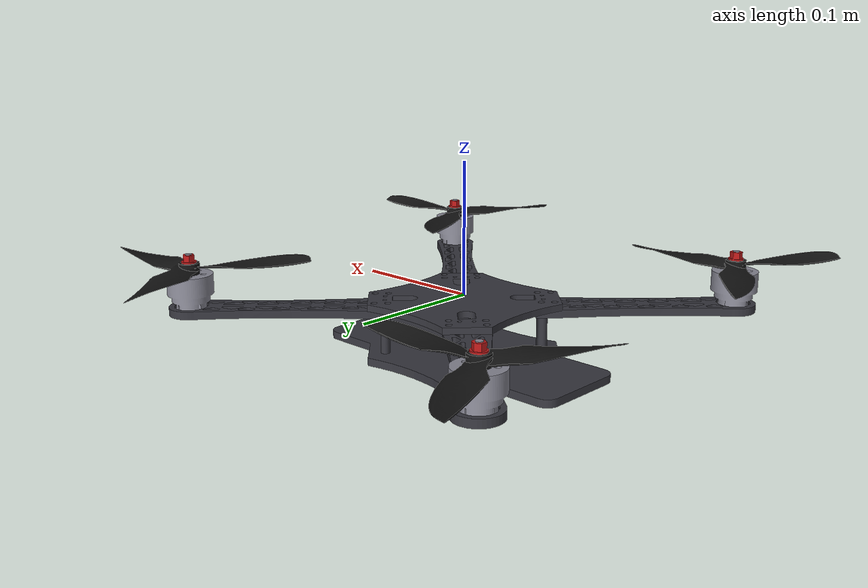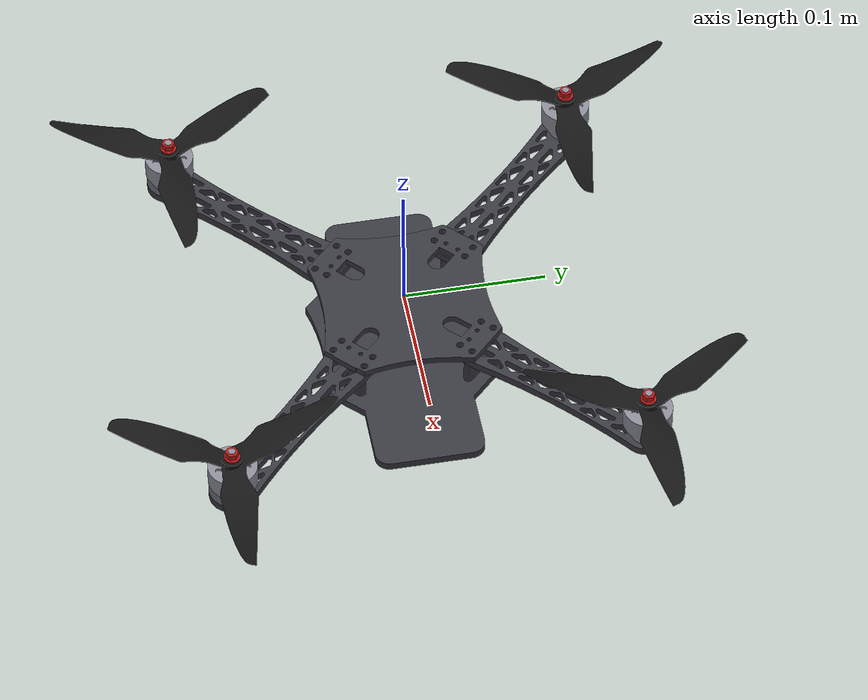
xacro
<?xml version="1.0"?>
<!--
  Custom Drone Build 03, true X, nose +x. Frame meshes are the CAD parts in
  assembled position (mm); base_link sits at the vehicle CoM.
  Rotor numbering and spin: see quad_mesh_common.xacro.
-->
<robot name="build03" xmlns:xacro="http://www.ros.org/wiki/xacro">

  <xacro:include filename="$(find my_drone_description)/urdf/quad_mesh_common.xacro"/>
  <xacro:include filename="$(find my_drone_description)/urdf/build03_params.xacro"/>
  <xacro:include filename="$(find my_drone_description)/urdf/quad_gazebo.xacro"/>

  <material name="frame_grey"><color rgba="0.22 0.22 0.25 1.0"/></material>

  <xacro:macro name="frame_part" params="file">
    <visual>
      <origin xyz="${cad_offset}" rpy="0 0 0"/>
      <geometry>
        <mesh filename="package://my_drone_description/meshes/build03/${file}.stl" scale="${mesh_scale}"/>
      </geometry>
      <material name="frame_grey"/>
    </visual>
  </xacro:macro>

  <link name="base_link">
    <inertial>
      <origin xyz="0 0 0" rpy="0 0 0"/>
      <mass value="${mass_base}"/>
      <inertia ixx="${body_ixx}" ixy="0.0" ixz="0.0"
               iyy="${body_iyy}" iyz="0.0"
               izz="${body_izz}"/>
    </inertial>

    <xacro:frame_part file="Base"/>
    <xacro:frame_part file="Chassis_with_pillar_pads"/>
    <xacro:frame_part file="Arm_plate_1"/>
    <xacro:frame_part file="Arm_plate_2"/>
    <xacro:frame_part file="Arm_plate_3"/>
    <xacro:frame_part file="Arm_plate_4"/>
    <xacro:frame_part file="Pillar_30mm_1"/>
    <xacro:frame_part file="Pillar_30mm_2"/>
    <xacro:frame_part file="Pillar_30mm_3"/>
    <xacro:frame_part file="Pillar_30mm_4"/>
    <xacro:quad_motor_visuals/>

    <!-- Base plate: what it lands on (CAD z 0-6 mm). -->
    <collision>
      <origin xyz="0 0 -0.0463" rpy="0 0 0"/>
      <geometry><box size="0.224 0.127 0.006"/></geometry>
    </collision>
    <!-- Arm plates + chassis (CAD z 36-47 mm). -->
    <collision>
      <origin xyz="0 0 -0.0078" rpy="0 0 0"/>
      <geometry><box size="0.126 0.126 0.011"/></geometry>
    </collision>
  </link>

  <xacro:quad_rotors/>

  <xacro:quad_gazebo_plugins/>

</robot>

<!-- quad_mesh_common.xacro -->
<robot xmlns:xacro="http://www.ros.org/wiki/xacro">

  <xacro:property name="mesh_scale" value="0.001 0.001 0.001"/>
  <xacro:property name="prop_mesh_h" value="0.0084"/>  <!-- prop hub height -->

  <xacro:property name="motor_constant"       value="3.7e-6"/>
  <xacro:property name="moment_constant"      value="0.016"/>
  <xacro:property name="max_rot_velocity"     value="2300"/>
  <xacro:property name="rotor_drag_coeff"     value="8.06428e-05"/>
  <xacro:property name="rolling_moment_coeff" value="1.0e-6"/>
  <!-- 7" props are heavy; spool-up/down a little slower than 5" racers. -->
  <xacro:property name="time_constant_up"     value="0.020"/>
  <xacro:property name="time_constant_down"   value="0.035"/>

  <!-- Prop 9.4 g + M5 flange nut 2 g; 180 mm diameter. -->
  <xacro:property name="mass_rotor"   value="0.0114"/>
  <xacro:property name="prop_radius"  value="0.0901"/>

  <xacro:property name="rotor_slowdown_sim" value="40"/>

  <material name="prop_black"><color rgba="0.08 0.08 0.08 1.0"/></material>
  <material name="motor_grey"><color rgba="0.55 0.55 0.60 1.0"/></material>
  <material name="nut_red">   <color rgba="0.75 0.10 0.10 1.0"/></material>

  <!-- spin: "cw" or "ccw" seen from above; selects the matching prop shape.
       x y z: rotor axis at the bottom of the prop hub, relative to the CoM. -->
  <xacro:macro name="mesh_rotor" params="number x y z spin">
    <link name="rotor_${number}">
      <inertial>
        <origin xyz="0 0 ${prop_mesh_h/2}" rpy="0 0 0"/>
        <mass value="${mass_rotor}"/>
        <inertia ixx="${mass_rotor * prop_radius * prop_radius / 4}" ixy="0.0" ixz="0.0"
                 iyy="${mass_rotor * prop_radius * prop_radius / 4}" iyz="0.0"
                 izz="${mass_rotor * prop_radius * prop_radius / 2}"/>
      </inertial>
      <visual>
        <geometry>
          <mesh filename="package://my_drone_description/meshes/common/Prop_7040-3_${spin}.stl" scale="${mesh_scale}"/>
        </geometry>
        <material name="prop_black"/>
      </visual>
      <visual>
        <origin xyz="0 0 ${prop_mesh_h}" rpy="0 0 0"/>
        <geometry>
          <mesh filename="package://my_drone_description/meshes/common/Nut_M5_flange.stl" scale="${mesh_scale}"/>
        </geometry>
        <material name="nut_red"/>
      </visual>
      <!-- No collision on the props: a spinning disc hitting the frame
           only costs solver time. -->
    </link>
    <joint name="rotor_${number}_joint" type="continuous">
      <parent link="base_link"/>
      <child  link="rotor_${number}"/>
      <origin xyz="${x} ${y} ${z}" rpy="0 0 0"/>
      <axis xyz="0 0 1"/>
      <limit effort="100.0" velocity="${max_rot_velocity}"/>
      <dynamics damping="0.0" friction="0.0"/>
    </joint>
  </xacro:macro>

  <!-- Motor can on base_link; z is the motor base (mounting face). -->
  <xacro:macro name="motor_visual" params="x y z">
    <visual>
      <origin xyz="${x} ${y} ${z}" rpy="0 0 0"/>
      <geometry>
        <mesh filename="package://my_drone_description/meshes/common/Motor_2807SL.stl" scale="${mesh_scale}"/>
      </geometry>
      <material name="motor_grey"/>
    </visual>
  </xacro:macro>

  <!-- The four rotors + motor cans for a quad, from per-drone properties:
       rotor_x_front / rotor_x_rear / rotor_y / rotor_z / motor_base_z. -->
  <xacro:macro name="quad_rotors" params="">
    <xacro:mesh_rotor number="0" x="${rotor_x_front}" y="${-rotor_y}" z="${rotor_z}" spin="ccw"/>  <!-- FR -->
    <xacro:mesh_rotor number="1" x="${rotor_x_rear}"  y="${ rotor_y}" z="${rotor_z}" spin="ccw"/>  <!-- RL -->
    <xacro:mesh_rotor number="2" x="${rotor_x_front}" y="${ rotor_y}" z="${rotor_z}" spin="cw"/>   <!-- FL -->
    <xacro:mesh_rotor number="3" x="${rotor_x_rear}"  y="${-rotor_y}" z="${rotor_z}" spin="cw"/>   <!-- RR -->
  </xacro:macro>

  <xacro:macro name="quad_motor_visuals" params="">
    <xacro:motor_visual x="${rotor_x_front}" y="${-rotor_y}" z="${motor_base_z}"/>
    <xacro:motor_visual x="${rotor_x_rear}"  y="${ rotor_y}" z="${motor_base_z}"/>
    <xacro:motor_visual x="${rotor_x_front}" y="${ rotor_y}" z="${motor_base_z}"/>
    <xacro:motor_visual x="${rotor_x_rear}"  y="${-rotor_y}" z="${motor_base_z}"/>
  </xacro:macro>

</robot>

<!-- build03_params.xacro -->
<robot xmlns:xacro="http://www.ros.org/wiki/xacro">

  <!-- ==================== MASS BUDGET (kg) ==================== -->
  <!-- Base 102 + chassis 48 + 4 arms 82 + 4 pillars 12  = 244 g (PAHT-CF) -->
  <!-- 4 x 2807 motor incl. leads                     = 220 g -->
  <!-- 4 x (7040x3 prop + M5 nut)                     =  46 g -->
  <!-- 6S 1800 mAh LiPo                               = 290 g -->
  <!-- FC+ESC 35, RX/GPS/VTX/cam 40, wiring 30, screws 25 = 130 g -->
  <!--                                     All-up:   ~= 931 g -->
  <xacro:property name="mass_total" value="0.931"/>
  <xacro:property name="mass_base"  value="${mass_total - 4*mass_rotor}"/>

  <!-- About the CoM, which is base_link's origin (49.3 mm above the
       bottom of the base plate). -->
  <xacro:property name="body_ixx" value="0.00711"/>
  <xacro:property name="body_iyy" value="0.00754"/>
  <xacro:property name="body_izz" value="0.01362"/>

  <!-- ==================== GEOMETRY (m, from the CoM) ==================== -->
  <!-- CAD is front +X, Z up, so meshes only shift down by the CoM height. -->
  <xacro:property name="cad_offset"    value="0 0 -0.0493"/>
  <xacro:property name="rotor_x_front" value=" 0.143"/>
  <xacro:property name="rotor_x_rear"  value="-0.143"/>
  <xacro:property name="rotor_y"       value=" 0.143"/>
  <xacro:property name="rotor_z"       value=" 0.0174"/>   <!-- prop hub bottom -->
  <xacro:property name="motor_base_z"  value="-0.0093"/>

  <xacro:property name="robot_ns" value="build03"/>

</robot>

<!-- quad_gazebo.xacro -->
<robot xmlns:xacro="http://www.ros.org/wiki/xacro">

  <xacro:arg name="controller" default="custom"/>

  <!-- ============ Motor model, instantiated once per rotor ============ -->
  <xacro:macro name="motor_plugin" params="number direction">
    <gazebo>
      <plugin filename="gz-sim-multicopter-motor-model-system"
              name="gz::sim::systems::MulticopterMotorModel">
        <robotNamespace>${robot_ns}</robotNamespace>
        <jointName>rotor_${number}_joint</jointName>
        <linkName>rotor_${number}</linkName>
        <turningDirection>${direction}</turningDirection>
        <timeConstantUp>${time_constant_up}</timeConstantUp>
        <timeConstantDown>${time_constant_down}</timeConstantDown>
        <maxRotVelocity>${max_rot_velocity}</maxRotVelocity>
        <motorConstant>${motor_constant}</motorConstant>
        <momentConstant>${moment_constant}</momentConstant>
        <commandSubTopic>gazebo/command/motor_speed</commandSubTopic>
        <motorNumber>${number}</motorNumber>
        <rotorDragCoefficient>${rotor_drag_coeff}</rotorDragCoefficient>
        <rollingMomentCoefficient>${rolling_moment_coeff}</rollingMomentCoefficient>
        <motorSpeedPubTopic>motor_speed/${number}</motorSpeedPubTopic>
        <rotorVelocitySlowdownSim>${rotor_slowdown_sim}</rotorVelocitySlowdownSim>
      </plugin>
    </gazebo>
  </xacro:macro>

  <!-- direction 1 == ccw, -1 == cw, and must agree with turningDirection above.
       Diagonally opposite rotors share a direction so yaw torque cancels. -->
  <xacro:macro name="rotor_config_entry" params="number dir">
    <rotor>
      <jointName>rotor_${number}_joint</jointName>
      <forceConstant>${motor_constant}</forceConstant>
      <momentConstant>${moment_constant}</momentConstant>
      <direction>${dir}</direction>
    </rotor>
  </xacro:macro>

  <xacro:macro name="quad_gazebo_plugins" params="">

    <xacro:motor_plugin number="0" direction="ccw"/>
    <xacro:motor_plugin number="1" direction="ccw"/>
    <xacro:motor_plugin number="2" direction="cw"/>
    <xacro:motor_plugin number="3" direction="cw"/>

    <quad_physics mass="${mass_total}"
                  ixx="${body_ixx}" iyy="${body_iyy}" izz="${body_izz}"
                  motor_constant="${motor_constant}"
                  moment_constant="${moment_constant}"
                  max_rot_velocity="${max_rot_velocity}">
      <rotor number="0" x="${rotor_x_front}" y="${-rotor_y}" direction="1"/>
      <rotor number="1" x="${rotor_x_rear}"  y="${ rotor_y}" direction="1"/>
      <rotor number="2" x="${rotor_x_front}" y="${ rotor_y}" direction="-1"/>
      <rotor number="3" x="${rotor_x_rear}"  y="${-rotor_y}" direction="-1"/>
    </quad_physics>

    <xacro:if value="${'$(arg controller)' == 'gz'}">
    <gazebo>
      <plugin filename="gz-sim-multicopter-control-system"
              name="gz::sim::systems::MulticopterVelocityControl">
        <robotNamespace>${robot_ns}</robotNamespace>
        <commandSubTopic>gazebo/command/twist</commandSubTopic>
        <enableSubTopic>enable</enableSubTopic>
        <comLinkName>base_link</comLinkName>

        <velocityGain>${velocity_gain}</velocityGain>
        <attitudeGain>${attitude_gain}</attitudeGain>
        <angularRateGain>${angular_rate_gain}</angularRateGain>

        <maximumLinearAcceleration>${max_linear_accel}</maximumLinearAcceleration>
        <maximumLinearVelocity>${max_linear_vel}</maximumLinearVelocity>
        <maximumAngularVelocity>${max_angular_vel}</maximumAngularVelocity>

        <rotorConfiguration>
          <xacro:rotor_config_entry number="0" dir="1"/>
          <xacro:rotor_config_entry number="1" dir="1"/>
          <xacro:rotor_config_entry number="2" dir="-1"/>
          <xacro:rotor_config_entry number="3" dir="-1"/>
        </rotorConfiguration>
      </plugin>
    </gazebo>
    </xacro:if>

    <!-- ============ Odometry: the exact state, for scoring only ============ -->
    <gazebo>
      <plugin filename="gz-sim-odometry-publisher-system"
              name="gz::sim::systems::OdometryPublisher">
        <odom_frame>odom</odom_frame>
        <robot_base_frame>base_link</robot_base_frame>
        <dimensions>3</dimensions>
        <odom_publish_frequency>50</odom_publish_frequency>
      </plugin>
    </gazebo>

    <!-- ============ Rotor joint states, so RViz can spin the props ============ -->
    <gazebo>
      <plugin filename="gz-sim-joint-state-publisher-system"
              name="gz::sim::systems::JointStatePublisher"/>
    </gazebo>

    <!-- IMU, noise as an IIM42653. Orientation is off: gz
         would fill it with the true attitude. -->
    <gazebo reference="base_link">
      <sensor name="imu_sensor" type="imu">
        <always_on>1</always_on>
        <update_rate>250</update_rate>
        <gz_frame_id>base_link</gz_frame_id>
        <imu>
          <enable_orientation>false</enable_orientation>
          <!-- 0.05 deg/s -->
          <angular_velocity>
            <x><noise type="gaussian"><mean>0</mean><stddev>0.0008726646</stddev></noise></x>
            <y><noise type="gaussian"><mean>0</mean><stddev>0.0008726646</stddev></noise></y>
            <z><noise type="gaussian"><mean>0</mean><stddev>0.0008726646</stddev></noise></z>
          </angular_velocity>
          <!-- 0.65 mg x/y, 0.70 mg z -->
          <linear_acceleration>
            <x><noise type="gaussian"><mean>0</mean><stddev>0.00637</stddev></noise></x>
            <y><noise type="gaussian"><mean>0</mean><stddev>0.00637</stddev></noise></y>
            <z><noise type="gaussian"><mean>0</mean><stddev>0.00686</stddev></noise></z>
          </linear_acceleration>
        </imu>
      </sensor>
    </gazebo>

    <!-- Barometer, noise as a BMP390 (Pa). -->
    <gazebo reference="base_link">
      <sensor name="air_pressure_sensor" type="air_pressure">
        <always_on>1</always_on>
        <update_rate>50</update_rate>
        <gz_frame_id>base_link</gz_frame_id>
        <air_pressure>
          <pressure><noise type="gaussian"><mean>0</mean><stddev>3</stddev></noise></pressure>
        </air_pressure>
      </sensor>
    </gazebo>

    <gazebo reference="base_link">
      <sensor name="magnetometer_sensor" type="magnetometer">
        <always_on>1</always_on>
        <update_rate>100</update_rate>
        <gz_frame_id>base_link</gz_frame_id>
        <magnetometer>
          <x><noise type="gaussian"><stddev>0.0001</stddev></noise></x>
          <y><noise type="gaussian"><stddev>0.0001</stddev></noise></y>
          <z><noise type="gaussian"><stddev>0.0001</stddev></noise></z>
        </magnetometer>
      </sensor>
    </gazebo>

    <gazebo reference="base_link">
      <sensor name="navsat_sensor" type="navsat">
        <always_on>1</always_on>
        <update_rate>10</update_rate>
        <gz_frame_id>base_link</gz_frame_id>
        <navsat>
          <position_sensing>
            <horizontal><noise type="gaussian"><stddev>2e-7</stddev></noise></horizontal>
            <vertical><noise type="gaussian"><stddev>0.03</stddev></noise></vertical>
          </position_sensing>
          <velocity_sensing>
            <horizontal><noise type="gaussian"><stddev>0.02</stddev></noise></horizontal>
            <vertical><noise type="gaussian"><stddev>0.02</stddev></noise></vertical>
          </velocity_sensing>
        </navsat>
      </sensor>
    </gazebo>

  </xacro:macro>
</robot>
